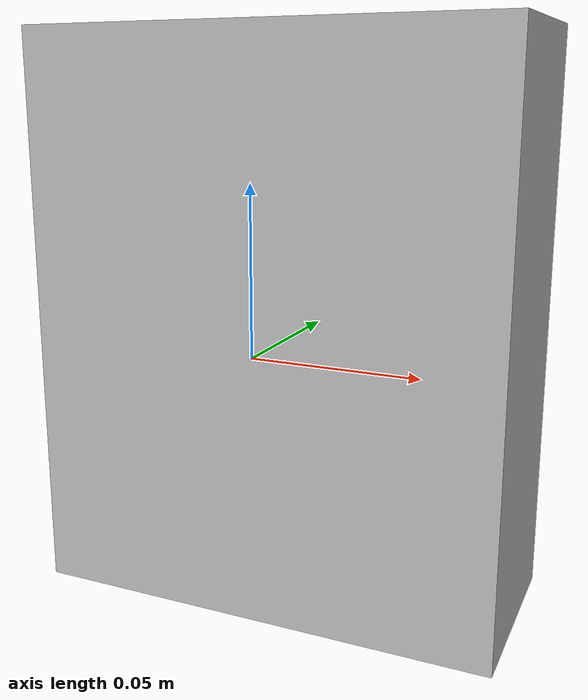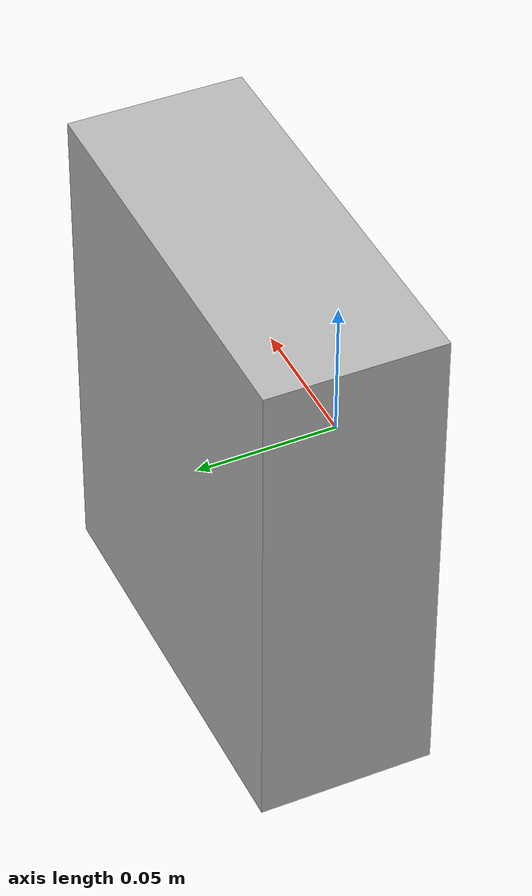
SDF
<?xml version="1.0" ?>
<sdf version="1.4">
  <model name="shelf2_box2_2">
    <link name="body">
      <pose>0 0 0 0 0 0</pose>
      <inertial>
        <pose>  -0.001000   0.030847   0.005000 0 0 0</pose>
        <mass>0.5</mass>
        <inertia>
          <ixx>0.01</ixx>
          <ixy>0</ixy>
          <ixz>0</ixz>
          <iyy>0.01</iyy>
          <iyz>0</iyz>
          <izz>0.01</izz>
        </inertia>
      </inertial>
      <collision name="collision">
        <geometry>
          <mesh>
            <uri>model://bookshelf/shelf2_items/box2_2/box2_2.dae</uri>
          </mesh>
        </geometry>
      </collision>
      <visual name="visual">
        <geometry>
          <mesh>
            <uri>model://bookshelf/shelf2_items/box2_2/box2_2.dae</uri>
          </mesh>
        </geometry>
      </visual>
    </link>
  </model>
</sdf>
